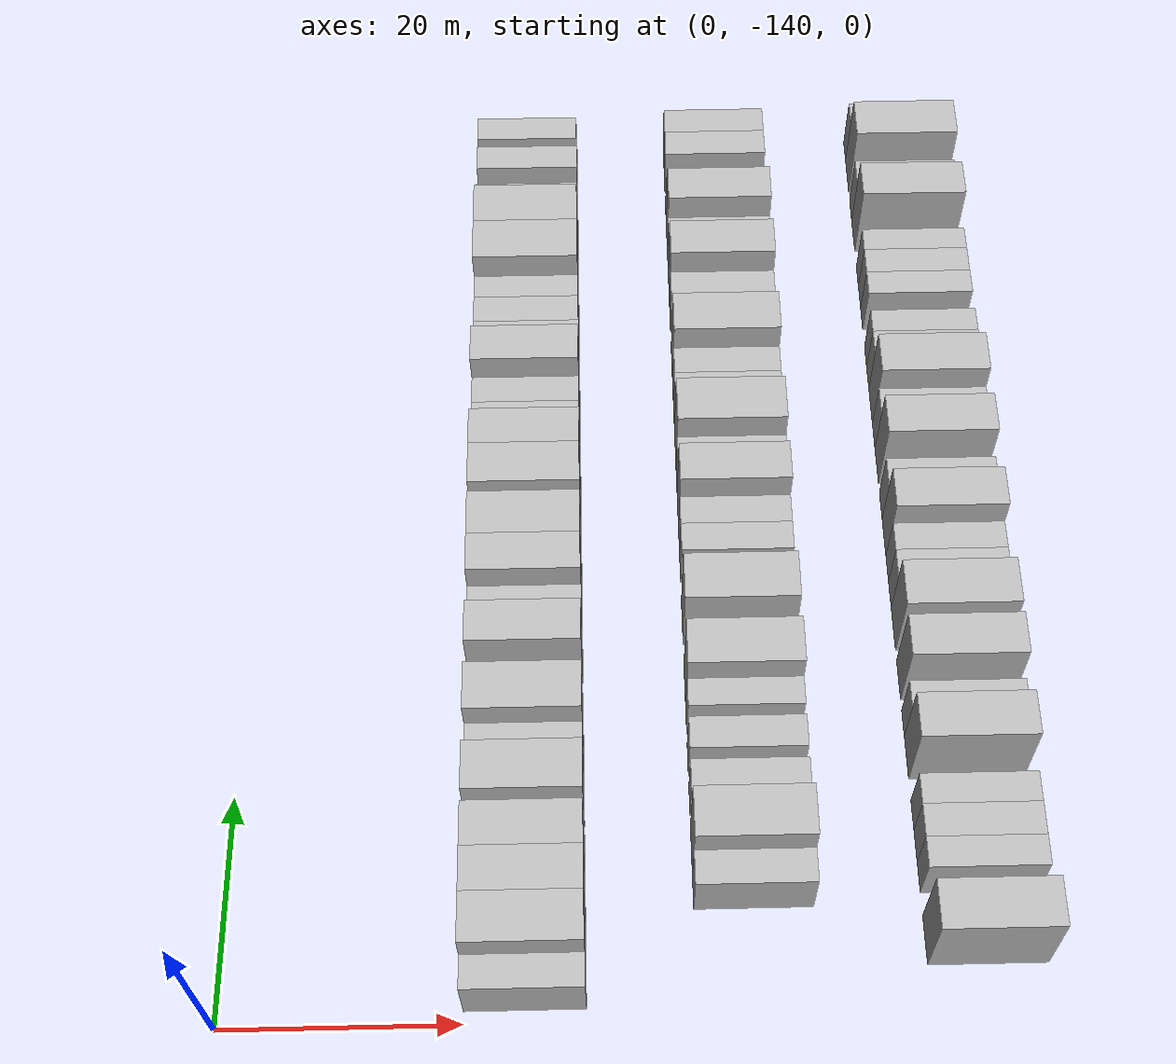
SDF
<sdf version="1.6">
 <world name="default">
  <model name="building_25">
   <static>1</static>
   <pose>25.0000 -137.4993 0 0.000000 0.000000 0.000000</pose>
   <link name="link">
    <pose>0 0 3.00 0 0 0</pose>
    <collision name="collision"><geometry><box><size>10.0000 2.8210 6.0000</size></box></geometry></collision>
    <visual name="visual">
     <cast_shadows>0</cast_shadows>
     <geometry><box><size>10.0000 2.8210 6.0000</size></box></geometry>
     <material>
      <script>
       <uri>model://HANNAS_wall/materials/scripts</uri>
       <uri>model://HANNAS_wall/materials/textures</uri>
       <name>vrc/HANNAS_wall</name>
      </script>
     </material>
    </visual>
   </link>
  </model>
  <model name="building_26">
   <static>1</static>
   <pose>25.0000 -133.9893 0 0.000000 0.000000 0.000000</pose>
   <link name="link">
    <pose>0 0 4.50 0 0 0</pose>
    <collision name="collision"><geometry><box><size>10.0000 4.1991 9.0000</size></box></geometry></collision>
    <visual name="visual">
     <cast_shadows>0</cast_shadows>
     <geometry><box><size>10.0000 4.1991 9.0000</size></box></geometry>
     <material>
      <script>
       <uri>model://HANNAS_wall/materials/scripts</uri>
       <uri>model://HANNAS_wall/materials/textures</uri>
       <name>vrc/HANNAS_wall</name>
      </script>
     </material>
    </visual>
   </link>
  </model>
  <model name="building_27">
   <static>1</static>
   <pose>25.0000 -129.9966 0 0.000000 0.000000 0.000000</pose>
   <link name="link">
    <pose>0 0 4.50 0 0 0</pose>
    <collision name="collision"><geometry><box><size>10.0000 3.7862 9.0000</size></box></geometry></collision>
    <visual name="visual">
     <cast_shadows>0</cast_shadows>
     <geometry><box><size>10.0000 3.7862 9.0000</size></box></geometry>
     <material>
      <script>
       <uri>model://HANNAS_wall/materials/scripts</uri>
       <uri>model://HANNAS_wall/materials/textures</uri>
       <name>vrc/HANNAS_wall</name>
      </script>
     </material>
    </visual>
   </link>
  </model>
  <model name="building_28">
   <static>1</static>
   <pose>25.0000 -126.1826 0 0.000000 0.000000 0.000000</pose>
   <link name="link">
    <pose>0 0 4.50 0 0 0</pose>
    <collision name="collision"><geometry><box><size>10.0000 3.8418 9.0000</size></box></geometry></collision>
    <visual name="visual">
     <cast_shadows>0</cast_shadows>
     <geometry><box><size>10.0000 3.8418 9.0000</size></box></geometry>
     <material>
      <script>
       <uri>model://HANNAS_wall/materials/scripts</uri>
       <uri>model://HANNAS_wall/materials/textures</uri>
       <name>vrc/HANNAS_wall</name>
      </script>
     </material>
    </visual>
   </link>
  </model>
  <model name="building_29">
   <static>1</static>
   <pose>25.0000 -121.1121 0 0.000000 0.000000 0.000000</pose>
   <link name="link">
    <pose>0 0 4.50 0 0 0</pose>
    <collision name="collision"><geometry><box><size>10.0000 4.2991 9.0000</size></box></geometry></collision>
    <visual name="visual">
     <cast_shadows>0</cast_shadows>
     <geometry><box><size>10.0000 4.2991 9.0000</size></box></geometry>
     <material>
      <script>
       <uri>model://HANNAS_wall/materials/scripts</uri>
       <uri>model://HANNAS_wall/materials/textures</uri>
       <name>vrc/HANNAS_wall</name>
      </script>
     </material>
    </visual>
   </link>
  </model>
  <model name="building_30">
   <static>1</static>
   <pose>25.0000 -117.5351 0 0.000000 0.000000 0.000000</pose>
   <link name="link">
    <pose>0 0 3.00 0 0 0</pose>
    <collision name="collision"><geometry><box><size>10.0000 2.8550 6.0000</size></box></geometry></collision>
    <visual name="visual">
     <cast_shadows>0</cast_shadows>
     <geometry><box><size>10.0000 2.8550 6.0000</size></box></geometry>
     <material>
      <script>
       <uri>model://HANNAS_wall/materials/scripts</uri>
       <uri>model://HANNAS_wall/materials/textures</uri>
       <name>vrc/HANNAS_wall</name>
      </script>
     </material>
    </visual>
   </link>
  </model>
  <model name="building_31">
   <static>1</static>
   <pose>25.0000 -113.9588 0 0.000000 0.000000 0.000000</pose>
   <link name="link">
    <pose>0 0 4.50 0 0 0</pose>
    <collision name="collision"><geometry><box><size>10.0000 4.2975 9.0000</size></box></geometry></collision>
    <visual name="visual">
     <cast_shadows>0</cast_shadows>
     <geometry><box><size>10.0000 4.2975 9.0000</size></box></geometry>
     <material>
      <script>
       <uri>model://HANNAS_wall/materials/scripts</uri>
       <uri>model://HANNAS_wall/materials/textures</uri>
       <name>vrc/HANNAS_wall</name>
      </script>
     </material>
    </visual>
   </link>
  </model>
  <model name="building_32">
   <static>1</static>
   <pose>25.0000 -107.8749 0 0.000000 0.000000 0.000000</pose>
   <link name="link">
    <pose>0 0 4.50 0 0 0</pose>
    <collision name="collision"><geometry><box><size>10.0000 3.8703 9.0000</size></box></geometry></collision>
    <visual name="visual">
     <cast_shadows>0</cast_shadows>
     <geometry><box><size>10.0000 3.8703 9.0000</size></box></geometry>
     <material>
      <script>
       <uri>model://HANNAS_wall/materials/scripts</uri>
       <uri>model://HANNAS_wall/materials/textures</uri>
       <name>vrc/HANNAS_wall</name>
      </script>
     </material>
    </visual>
   </link>
  </model>
  <model name="building_33">
   <static>1</static>
   <pose>25.0000 -104.4467 0 0.000000 0.000000 0.000000</pose>
   <link name="link">
    <pose>0 0 3.00 0 0 0</pose>
    <collision name="collision"><geometry><box><size>10.0000 2.9861 6.0000</size></box></geometry></collision>
    <visual name="visual">
     <cast_shadows>0</cast_shadows>
     <geometry><box><size>10.0000 2.9861 6.0000</size></box></geometry>
     <material>
      <script>
       <uri>model://HANNAS_wall/materials/scripts</uri>
       <uri>model://HANNAS_wall/materials/textures</uri>
       <name>vrc/HANNAS_wall</name>
      </script>
     </material>
    </visual>
   </link>
  </model>
  <model name="building_34">
   <static>1</static>
   <pose>25.0000 -101.1200 0 0.000000 0.000000 0.000000</pose>
   <link name="link">
    <pose>0 0 4.50 0 0 0</pose>
    <collision name="collision"><geometry><box><size>10.0000 3.6673 9.0000</size></box></geometry></collision>
    <visual name="visual">
     <cast_shadows>0</cast_shadows>
     <geometry><box><size>10.0000 3.6673 9.0000</size></box></geometry>
     <material>
      <script>
       <uri>model://HANNAS_wall/materials/scripts</uri>
       <uri>model://HANNAS_wall/materials/textures</uri>
       <name>vrc/HANNAS_wall</name>
      </script>
     </material>
    </visual>
   </link>
  </model>
  <model name="building_35">
   <static>1</static>
   <pose>25.0000 -97.1471 0 0.000000 0.000000 0.000000</pose>
   <link name="link">
    <pose>0 0 4.50 0 0 0</pose>
    <collision name="collision"><geometry><box><size>10.0000 4.2785 9.0000</size></box></geometry></collision>
    <visual name="visual">
     <cast_shadows>0</cast_shadows>
     <geometry><box><size>10.0000 4.2785 9.0000</size></box></geometry>
     <material>
      <script>
       <uri>model://HANNAS_wall/materials/scripts</uri>
       <uri>model://HANNAS_wall/materials/textures</uri>
       <name>vrc/HANNAS_wall</name>
      </script>
     </material>
    </visual>
   </link>
  </model>
  <model name="building_36">
   <static>1</static>
   <pose>25.0000 -91.9630 0 0.000000 0.000000 0.000000</pose>
   <link name="link">
    <pose>0 0 4.50 0 0 0</pose>
    <collision name="collision"><geometry><box><size>10.0000 4.0897 9.0000</size></box></geometry></collision>
    <visual name="visual">
     <cast_shadows>0</cast_shadows>
     <geometry><box><size>10.0000 4.0897 9.0000</size></box></geometry>
     <material>
      <script>
       <uri>model://HANNAS_wall/materials/scripts</uri>
       <uri>model://HANNAS_wall/materials/textures</uri>
       <name>vrc/HANNAS_wall</name>
      </script>
     </material>
    </visual>
   </link>
  </model>
  <model name="building_37">
   <static>1</static>
   <pose>25.0000 -88.0747 0 0.000000 0.000000 0.000000</pose>
   <link name="link">
    <pose>0 0 4.50 0 0 0</pose>
    <collision name="collision"><geometry><box><size>10.0000 3.6870 9.0000</size></box></geometry></collision>
    <visual name="visual">
     <cast_shadows>0</cast_shadows>
     <geometry><box><size>10.0000 3.6870 9.0000</size></box></geometry>
     <material>
      <script>
       <uri>model://HANNAS_wall/materials/scripts</uri>
       <uri>model://HANNAS_wall/materials/textures</uri>
       <name>vrc/HANNAS_wall</name>
      </script>
     </material>
    </visual>
   </link>
  </model>
  <model name="building_38">
   <static>1</static>
   <pose>25.0000 -84.8707 0 0.000000 0.000000 0.000000</pose>
   <link name="link">
    <pose>0 0 3.00 0 0 0</pose>
    <collision name="collision"><geometry><box><size>10.0000 2.7210 6.0000</size></box></geometry></collision>
    <visual name="visual">
     <cast_shadows>0</cast_shadows>
     <geometry><box><size>10.0000 2.7210 6.0000</size></box></geometry>
     <material>
      <script>
       <uri>model://HANNAS_wall/materials/scripts</uri>
       <uri>model://HANNAS_wall/materials/textures</uri>
       <name>vrc/HANNAS_wall</name>
      </script>
     </material>
    </visual>
   </link>
  </model>
  <model name="building_39">
   <static>1</static>
   <pose>25.0000 -82.1337 0 0.000000 0.000000 0.000000</pose>
   <link name="link">
    <pose>0 0 3.00 0 0 0</pose>
    <collision name="collision"><geometry><box><size>10.0000 2.7530 6.0000</size></box></geometry></collision>
    <visual name="visual">
     <cast_shadows>0</cast_shadows>
     <geometry><box><size>10.0000 2.7530 6.0000</size></box></geometry>
     <material>
      <script>
       <uri>model://HANNAS_wall/materials/scripts</uri>
       <uri>model://HANNAS_wall/materials/textures</uri>
       <name>vrc/HANNAS_wall</name>
      </script>
     </material>
    </visual>
   </link>
  </model>
  <model name="building_40">
   <static>1</static>
   <pose>25.0000 -78.8651 0 0.000000 0.000000 0.000000</pose>
   <link name="link">
    <pose>0 0 4.50 0 0 0</pose>
    <collision name="collision"><geometry><box><size>10.0000 3.7840 9.0000</size></box></geometry></collision>
    <visual name="visual">
     <cast_shadows>0</cast_shadows>
     <geometry><box><size>10.0000 3.7840 9.0000</size></box></geometry>
     <material>
      <script>
       <uri>model://HANNAS_wall/materials/scripts</uri>
       <uri>model://HANNAS_wall/materials/textures</uri>
       <name>vrc/HANNAS_wall</name>
      </script>
     </material>
    </visual>
   </link>
  </model>
  <model name="building_41">
   <static>1</static>
   <pose>25.0000 -75.6244 0 0.000000 0.000000 0.000000</pose>
   <link name="link">
    <pose>0 0 3.00 0 0 0</pose>
    <collision name="collision"><geometry><box><size>10.0000 2.6975 6.0000</size></box></geometry></collision>
    <visual name="visual">
     <cast_shadows>0</cast_shadows>
     <geometry><box><size>10.0000 2.6975 6.0000</size></box></geometry>
     <material>
      <script>
       <uri>model://HANNAS_wall/materials/scripts</uri>
       <uri>model://HANNAS_wall/materials/textures</uri>
       <name>vrc/HANNAS_wall</name>
      </script>
     </material>
    </visual>
   </link>
  </model>
  <model name="building_42">
   <static>1</static>
   <pose>25.0000 -72.8393 0 0.000000 0.000000 0.000000</pose>
   <link name="link">
    <pose>0 0 3.00 0 0 0</pose>
    <collision name="collision"><geometry><box><size>10.0000 2.8727 6.0000</size></box></geometry></collision>
    <visual name="visual">
     <cast_shadows>0</cast_shadows>
     <geometry><box><size>10.0000 2.8727 6.0000</size></box></geometry>
     <material>
      <script>
       <uri>model://HANNAS_wall/materials/scripts</uri>
       <uri>model://HANNAS_wall/materials/textures</uri>
       <name>vrc/HANNAS_wall</name>
      </script>
     </material>
    </visual>
   </link>
  </model>
  <model name="building_43">
   <static>1</static>
   <pose>25.0000 -70.1490 0 0.000000 0.000000 0.000000</pose>
   <link name="link">
    <pose>0 0 3.00 0 0 0</pose>
    <collision name="collision"><geometry><box><size>10.0000 2.5079 6.0000</size></box></geometry></collision>
    <visual name="visual">
     <cast_shadows>0</cast_shadows>
     <geometry><box><size>10.0000 2.5079 6.0000</size></box></geometry>
     <material>
      <script>
       <uri>model://HANNAS_wall/materials/scripts</uri>
       <uri>model://HANNAS_wall/materials/textures</uri>
       <name>vrc/HANNAS_wall</name>
      </script>
     </material>
    </visual>
   </link>
  </model>
  <model name="building_44">
   <static>1</static>
   <pose>25.0000 -66.6696 0 0.000000 0.000000 0.000000</pose>
   <link name="link">
    <pose>0 0 4.50 0 0 0</pose>
    <collision name="collision"><geometry><box><size>10.0000 4.4510 9.0000</size></box></geometry></collision>
    <visual name="visual">
     <cast_shadows>0</cast_shadows>
     <geometry><box><size>10.0000 4.4510 9.0000</size></box></geometry>
     <material>
      <script>
       <uri>model://HANNAS_wall/materials/scripts</uri>
       <uri>model://HANNAS_wall/materials/textures</uri>
       <name>vrc/HANNAS_wall</name>
      </script>
     </material>
    </visual>
   </link>
  </model>
  <model name="building_45">
   <static>1</static>
   <pose>25.0000 -62.2535 0 0.000000 0.000000 0.000000</pose>
   <link name="link">
    <pose>0 0 4.50 0 0 0</pose>
    <collision name="collision"><geometry><box><size>10.0000 4.3812 9.0000</size></box></geometry></collision>
    <visual name="visual">
     <cast_shadows>0</cast_shadows>
     <geometry><box><size>10.0000 4.3812 9.0000</size></box></geometry>
     <material>
      <script>
       <uri>model://HANNAS_wall/materials/scripts</uri>
       <uri>model://HANNAS_wall/materials/textures</uri>
       <name>vrc/HANNAS_wall</name>
      </script>
     </material>
    </visual>
   </link>
  </model>
  <model name="building_46">
   <static>1</static>
   <pose>25.0000 -58.7166 0 0.000000 0.000000 0.000000</pose>
   <link name="link">
    <pose>0 0 3.00 0 0 0</pose>
    <collision name="collision"><geometry><box><size>10.0000 2.6926 6.0000</size></box></geometry></collision>
    <visual name="visual">
     <cast_shadows>0</cast_shadows>
     <geometry><box><size>10.0000 2.6926 6.0000</size></box></geometry>
     <material>
      <script>
       <uri>model://HANNAS_wall/materials/scripts</uri>
       <uri>model://HANNAS_wall/materials/textures</uri>
       <name>vrc/HANNAS_wall</name>
      </script>
     </material>
    </visual>
   </link>
  </model>
  <model name="building_47">
   <static>1</static>
   <pose>25.0000 -53.9644 0 0.000000 0.000000 0.000000</pose>
   <link name="link">
    <pose>0 0 3.00 0 0 0</pose>
    <collision name="collision"><geometry><box><size>10.0000 2.8117 6.0000</size></box></geometry></collision>
    <visual name="visual">
     <cast_shadows>0</cast_shadows>
     <geometry><box><size>10.0000 2.8117 6.0000</size></box></geometry>
     <material>
      <script>
       <uri>model://HANNAS_wall/materials/scripts</uri>
       <uri>model://HANNAS_wall/materials/textures</uri>
       <name>vrc/HANNAS_wall</name>
      </script>
     </material>
    </visual>
   </link>
  </model>
  <model name="building_48">
   <static>1</static>
   <pose>25.0000 -50.1819 0 0.000000 0.000000 0.000000</pose>
   <link name="link">
    <pose>0 0 3.00 0 0 0</pose>
    <collision name="collision"><geometry><box><size>10.0000 2.7533 6.0000</size></box></geometry></collision>
    <visual name="visual">
     <cast_shadows>0</cast_shadows>
     <geometry><box><size>10.0000 2.7533 6.0000</size></box></geometry>
     <material>
      <script>
       <uri>model://HANNAS_wall/materials/scripts</uri>
       <uri>model://HANNAS_wall/materials/textures</uri>
       <name>vrc/HANNAS_wall</name>
      </script>
     </material>
    </visual>
   </link>
  </model>
  <model name="building_138">
   <static>1</static>
   <pose>44.0000 -129.2678 0 0.000000 0.000000 0.000000</pose>
   <link name="link">
    <pose>0 0 3.00 0 0 0</pose>
    <collision name="collision"><geometry><box><size>10.0000 2.9373 6.0000</size></box></geometry></collision>
    <visual name="visual">
     <cast_shadows>0</cast_shadows>
     <geometry><box><size>10.0000 2.9373 6.0000</size></box></geometry>
     <material>
      <script>
       <uri>model://HANNAS_wall/materials/scripts</uri>
       <uri>model://HANNAS_wall/materials/textures</uri>
       <name>vrc/HANNAS_wall</name>
      </script>
     </material>
    </visual>
   </link>
  </model>
  <model name="building_139">
   <static>1</static>
   <pose>44.0000 -125.6050 0 0.000000 0.000000 0.000000</pose>
   <link name="link">
    <pose>0 0 4.50 0 0 0</pose>
    <collision name="collision"><geometry><box><size>10.0000 4.3883 9.0000</size></box></geometry></collision>
    <visual name="visual">
     <cast_shadows>0</cast_shadows>
     <geometry><box><size>10.0000 4.3883 9.0000</size></box></geometry>
     <material>
      <script>
       <uri>model://HANNAS_wall/materials/scripts</uri>
       <uri>model://HANNAS_wall/materials/textures</uri>
       <name>vrc/HANNAS_wall</name>
      </script>
     </material>
    </visual>
   </link>
  </model>
  <model name="building_140">
   <static>1</static>
   <pose>44.0000 -121.0929 0 0.000000 0.000000 0.000000</pose>
   <link name="link">
    <pose>0 0 3.00 0 0 0</pose>
    <collision name="collision"><geometry><box><size>10.0000 2.6358 6.0000</size></box></geometry></collision>
    <visual name="visual">
     <cast_shadows>0</cast_shadows>
     <geometry><box><size>10.0000 2.6358 6.0000</size></box></geometry>
     <material>
      <script>
       <uri>model://HANNAS_wall/materials/scripts</uri>
       <uri>model://HANNAS_wall/materials/textures</uri>
       <name>vrc/HANNAS_wall</name>
      </script>
     </material>
    </visual>
   </link>
  </model>
  <model name="building_141">
   <static>1</static>
   <pose>44.0000 -117.3289 0 0.000000 0.000000 0.000000</pose>
   <link name="link">
    <pose>0 0 3.00 0 0 0</pose>
    <collision name="collision"><geometry><box><size>10.0000 2.8922 6.0000</size></box></geometry></collision>
    <visual name="visual">
     <cast_shadows>0</cast_shadows>
     <geometry><box><size>10.0000 2.8922 6.0000</size></box></geometry>
     <material>
      <script>
       <uri>model://HANNAS_wall/materials/scripts</uri>
       <uri>model://HANNAS_wall/materials/textures</uri>
       <name>vrc/HANNAS_wall</name>
      </script>
     </material>
    </visual>
   </link>
  </model>
  <model name="building_142">
   <static>1</static>
   <pose>44.0000 -113.6048 0 0.000000 0.000000 0.000000</pose>
   <link name="link">
    <pose>0 0 3.00 0 0 0</pose>
    <collision name="collision"><geometry><box><size>10.0000 2.5561 6.0000</size></box></geometry></collision>
    <visual name="visual">
     <cast_shadows>0</cast_shadows>
     <geometry><box><size>10.0000 2.5561 6.0000</size></box></geometry>
     <material>
      <script>
       <uri>model://HANNAS_wall/materials/scripts</uri>
       <uri>model://HANNAS_wall/materials/textures</uri>
       <name>vrc/HANNAS_wall</name>
      </script>
     </material>
    </visual>
   </link>
  </model>
  <model name="building_143">
   <static>1</static>
   <pose>44.0000 -110.2268 0 0.000000 0.000000 0.000000</pose>
   <link name="link">
    <pose>0 0 4.50 0 0 0</pose>
    <collision name="collision"><geometry><box><size>10.0000 4.1998 9.0000</size></box></geometry></collision>
    <visual name="visual">
     <cast_shadows>0</cast_shadows>
     <geometry><box><size>10.0000 4.1998 9.0000</size></box></geometry>
     <material>
      <script>
       <uri>model://HANNAS_wall/materials/scripts</uri>
       <uri>model://HANNAS_wall/materials/textures</uri>
       <name>vrc/HANNAS_wall</name>
      </script>
     </material>
    </visual>
   </link>
  </model>
  <model name="building_144">
   <static>1</static>
   <pose>44.0000 -103.9332 0 0.000000 0.000000 0.000000</pose>
   <link name="link">
    <pose>0 0 4.50 0 0 0</pose>
    <collision name="collision"><geometry><box><size>10.0000 4.3876 9.0000</size></box></geometry></collision>
    <visual name="visual">
     <cast_shadows>0</cast_shadows>
     <geometry><box><size>10.0000 4.3876 9.0000</size></box></geometry>
     <material>
      <script>
       <uri>model://HANNAS_wall/materials/scripts</uri>
       <uri>model://HANNAS_wall/materials/textures</uri>
       <name>vrc/HANNAS_wall</name>
      </script>
     </material>
    </visual>
   </link>
  </model>
  <model name="building_145">
   <static>1</static>
   <pose>44.0000 -98.3554 0 0.000000 0.000000 0.000000</pose>
   <link name="link">
    <pose>0 0 3.00 0 0 0</pose>
    <collision name="collision"><geometry><box><size>10.0000 2.7679 6.0000</size></box></geometry></collision>
    <visual name="visual">
     <cast_shadows>0</cast_shadows>
     <geometry><box><size>10.0000 2.7679 6.0000</size></box></geometry>
     <material>
      <script>
       <uri>model://HANNAS_wall/materials/scripts</uri>
       <uri>model://HANNAS_wall/materials/textures</uri>
       <name>vrc/HANNAS_wall</name>
      </script>
     </material>
    </visual>
   </link>
  </model>
  <model name="building_146">
   <static>1</static>
   <pose>44.0000 -95.5888 0 0.000000 0.000000 0.000000</pose>
   <link name="link">
    <pose>0 0 3.00 0 0 0</pose>
    <collision name="collision"><geometry><box><size>10.0000 2.7652 6.0000</size></box></geometry></collision>
    <visual name="visual">
     <cast_shadows>0</cast_shadows>
     <geometry><box><size>10.0000 2.7652 6.0000</size></box></geometry>
     <material>
      <script>
       <uri>model://HANNAS_wall/materials/scripts</uri>
       <uri>model://HANNAS_wall/materials/textures</uri>
       <name>vrc/HANNAS_wall</name>
      </script>
     </material>
    </visual>
   </link>
  </model>
  <model name="building_147">
   <static>1</static>
   <pose>44.0000 -92.2935 0 0.000000 0.000000 0.000000</pose>
   <link name="link">
    <pose>0 0 4.50 0 0 0</pose>
    <collision name="collision"><geometry><box><size>10.0000 3.8253 9.0000</size></box></geometry></collision>
    <visual name="visual">
     <cast_shadows>0</cast_shadows>
     <geometry><box><size>10.0000 3.8253 9.0000</size></box></geometry>
     <material>
      <script>
       <uri>model://HANNAS_wall/materials/scripts</uri>
       <uri>model://HANNAS_wall/materials/textures</uri>
       <name>vrc/HANNAS_wall</name>
      </script>
     </material>
    </visual>
   </link>
  </model>
  <model name="building_148">
   <static>1</static>
   <pose>44.0000 -89.0748 0 0.000000 0.000000 0.000000</pose>
   <link name="link">
    <pose>0 0 3.00 0 0 0</pose>
    <collision name="collision"><geometry><box><size>10.0000 2.6122 6.0000</size></box></geometry></collision>
    <visual name="visual">
     <cast_shadows>0</cast_shadows>
     <geometry><box><size>10.0000 2.6122 6.0000</size></box></geometry>
     <material>
      <script>
       <uri>model://HANNAS_wall/materials/scripts</uri>
       <uri>model://HANNAS_wall/materials/textures</uri>
       <name>vrc/HANNAS_wall</name>
      </script>
     </material>
    </visual>
   </link>
  </model>
  <model name="building_149">
   <static>1</static>
   <pose>44.0000 -85.5253 0 0.000000 0.000000 0.000000</pose>
   <link name="link">
    <pose>0 0 4.50 0 0 0</pose>
    <collision name="collision"><geometry><box><size>10.0000 4.4867 9.0000</size></box></geometry></collision>
    <visual name="visual">
     <cast_shadows>0</cast_shadows>
     <geometry><box><size>10.0000 4.4867 9.0000</size></box></geometry>
     <material>
      <script>
       <uri>model://HANNAS_wall/materials/scripts</uri>
       <uri>model://HANNAS_wall/materials/textures</uri>
       <name>vrc/HANNAS_wall</name>
      </script>
     </material>
    </visual>
   </link>
  </model>
  <model name="building_150">
   <static>1</static>
   <pose>44.0000 -81.9376 0 0.000000 0.000000 0.000000</pose>
   <link name="link">
    <pose>0 0 3.00 0 0 0</pose>
    <collision name="collision"><geometry><box><size>10.0000 2.6887 6.0000</size></box></geometry></collision>
    <visual name="visual">
     <cast_shadows>0</cast_shadows>
     <geometry><box><size>10.0000 2.6887 6.0000</size></box></geometry>
     <material>
      <script>
       <uri>model://HANNAS_wall/materials/scripts</uri>
       <uri>model://HANNAS_wall/materials/textures</uri>
       <name>vrc/HANNAS_wall</name>
      </script>
     </material>
    </visual>
   </link>
  </model>
  <model name="building_151">
   <static>1</static>
   <pose>44.0000 -79.1861 0 0.000000 0.000000 0.000000</pose>
   <link name="link">
    <pose>0 0 3.00 0 0 0</pose>
    <collision name="collision"><geometry><box><size>10.0000 2.8143 6.0000</size></box></geometry></collision>
    <visual name="visual">
     <cast_shadows>0</cast_shadows>
     <geometry><box><size>10.0000 2.8143 6.0000</size></box></geometry>
     <material>
      <script>
       <uri>model://HANNAS_wall/materials/scripts</uri>
       <uri>model://HANNAS_wall/materials/textures</uri>
       <name>vrc/HANNAS_wall</name>
      </script>
     </material>
    </visual>
   </link>
  </model>
  <model name="building_152">
   <static>1</static>
   <pose>44.0000 -75.6873 0 0.000000 0.000000 0.000000</pose>
   <link name="link">
    <pose>0 0 4.50 0 0 0</pose>
    <collision name="collision"><geometry><box><size>10.0000 4.1834 9.0000</size></box></geometry></collision>
    <visual name="visual">
     <cast_shadows>0</cast_shadows>
     <geometry><box><size>10.0000 4.1834 9.0000</size></box></geometry>
     <material>
      <script>
       <uri>model://HANNAS_wall/materials/scripts</uri>
       <uri>model://HANNAS_wall/materials/textures</uri>
       <name>vrc/HANNAS_wall</name>
      </script>
     </material>
    </visual>
   </link>
  </model>
  <model name="building_153">
   <static>1</static>
   <pose>44.0000 -70.1980 0 0.000000 0.000000 0.000000</pose>
   <link name="link">
    <pose>0 0 3.00 0 0 0</pose>
    <collision name="collision"><geometry><box><size>10.0000 2.7953 6.0000</size></box></geometry></collision>
    <visual name="visual">
     <cast_shadows>0</cast_shadows>
     <geometry><box><size>10.0000 2.7953 6.0000</size></box></geometry>
     <material>
      <script>
       <uri>model://HANNAS_wall/materials/scripts</uri>
       <uri>model://HANNAS_wall/materials/textures</uri>
       <name>vrc/HANNAS_wall</name>
      </script>
     </material>
    </visual>
   </link>
  </model>
  <model name="building_154">
   <static>1</static>
   <pose>44.0000 -66.8519 0 0.000000 0.000000 0.000000</pose>
   <link name="link">
    <pose>0 0 4.50 0 0 0</pose>
    <collision name="collision"><geometry><box><size>10.0000 3.8970 9.0000</size></box></geometry></collision>
    <visual name="visual">
     <cast_shadows>0</cast_shadows>
     <geometry><box><size>10.0000 3.8970 9.0000</size></box></geometry>
     <material>
      <script>
       <uri>model://HANNAS_wall/materials/scripts</uri>
       <uri>model://HANNAS_wall/materials/textures</uri>
       <name>vrc/HANNAS_wall</name>
      </script>
     </material>
    </visual>
   </link>
  </model>
  <model name="building_155">
   <static>1</static>
   <pose>44.0000 -63.4823 0 0.000000 0.000000 0.000000</pose>
   <link name="link">
    <pose>0 0 3.00 0 0 0</pose>
    <collision name="collision"><geometry><box><size>10.0000 2.8421 6.0000</size></box></geometry></collision>
    <visual name="visual">
     <cast_shadows>0</cast_shadows>
     <geometry><box><size>10.0000 2.8421 6.0000</size></box></geometry>
     <material>
      <script>
       <uri>model://HANNAS_wall/materials/scripts</uri>
       <uri>model://HANNAS_wall/materials/textures</uri>
       <name>vrc/HANNAS_wall</name>
      </script>
     </material>
    </visual>
   </link>
  </model>
  <model name="building_156">
   <static>1</static>
   <pose>44.0000 -60.1955 0 0.000000 0.000000 0.000000</pose>
   <link name="link">
    <pose>0 0 4.50 0 0 0</pose>
    <collision name="collision"><geometry><box><size>10.0000 3.7317 9.0000</size></box></geometry></collision>
    <visual name="visual">
     <cast_shadows>0</cast_shadows>
     <geometry><box><size>10.0000 3.7317 9.0000</size></box></geometry>
     <material>
      <script>
       <uri>model://HANNAS_wall/materials/scripts</uri>
       <uri>model://HANNAS_wall/materials/textures</uri>
       <name>vrc/HANNAS_wall</name>
      </script>
     </material>
    </visual>
   </link>
  </model>
  <model name="building_157">
   <static>1</static>
   <pose>44.0000 -57.1191 0 0.000000 0.000000 0.000000</pose>
   <link name="link">
    <pose>0 0 3.00 0 0 0</pose>
    <collision name="collision"><geometry><box><size>10.0000 2.4211 6.0000</size></box></geometry></collision>
    <visual name="visual">
     <cast_shadows>0</cast_shadows>
     <geometry><box><size>10.0000 2.4211 6.0000</size></box></geometry>
     <material>
      <script>
       <uri>model://HANNAS_wall/materials/scripts</uri>
       <uri>model://HANNAS_wall/materials/textures</uri>
       <name>vrc/HANNAS_wall</name>
      </script>
     </material>
    </visual>
   </link>
  </model>
  <model name="building_158">
   <static>1</static>
   <pose>44.0000 -52.4338 0 0.000000 0.000000 0.000000</pose>
   <link name="link">
    <pose>0 0 3.00 0 0 0</pose>
    <collision name="collision"><geometry><box><size>10.0000 2.9494 6.0000</size></box></geometry></collision>
    <visual name="visual">
     <cast_shadows>0</cast_shadows>
     <geometry><box><size>10.0000 2.9494 6.0000</size></box></geometry>
     <material>
      <script>
       <uri>model://HANNAS_wall/materials/scripts</uri>
       <uri>model://HANNAS_wall/materials/textures</uri>
       <name>vrc/HANNAS_wall</name>
      </script>
     </material>
    </visual>
   </link>
  </model>
  <model name="building_159">
   <static>1</static>
   <pose>44.0000 -49.5028 0 0.000000 0.000000 0.000000</pose>
   <link name="link">
    <pose>0 0 3.00 0 0 0</pose>
    <collision name="collision"><geometry><box><size>10.0000 2.9127 6.0000</size></box></geometry></collision>
    <visual name="visual">
     <cast_shadows>0</cast_shadows>
     <geometry><box><size>10.0000 2.9127 6.0000</size></box></geometry>
     <material>
      <script>
       <uri>model://HANNAS_wall/materials/scripts</uri>
       <uri>model://HANNAS_wall/materials/textures</uri>
       <name>vrc/HANNAS_wall</name>
      </script>
     </material>
    </visual>
   </link>
  </model>
  <model name="building_259">
   <static>1</static>
   <pose>63.0000 -133.8009 0 0.000000 0.000000 0.000000</pose>
   <link name="link">
    <pose>0 0 4.50 0 0 0</pose>
    <collision name="collision"><geometry><box><size>10.0000 4.1885 9.0000</size></box></geometry></collision>
    <visual name="visual">
     <cast_shadows>0</cast_shadows>
     <geometry><box><size>10.0000 4.1885 9.0000</size></box></geometry>
     <material>
      <script>
       <uri>model://HANNAS_wall/materials/scripts</uri>
       <uri>model://HANNAS_wall/materials/textures</uri>
       <name>vrc/HANNAS_wall</name>
      </script>
     </material>
    </visual>
   </link>
  </model>
  <model name="building_260">
   <static>1</static>
   <pose>63.0000 -128.3763 0 0.000000 0.000000 0.000000</pose>
   <link name="link">
    <pose>0 0 3.00 0 0 0</pose>
    <collision name="collision"><geometry><box><size>10.0000 2.6608 6.0000</size></box></geometry></collision>
    <visual name="visual">
     <cast_shadows>0</cast_shadows>
     <geometry><box><size>10.0000 2.6608 6.0000</size></box></geometry>
     <material>
      <script>
       <uri>model://HANNAS_wall/materials/scripts</uri>
       <uri>model://HANNAS_wall/materials/textures</uri>
       <name>vrc/HANNAS_wall</name>
      </script>
     </material>
    </visual>
   </link>
  </model>
  <model name="building_261">
   <static>1</static>
   <pose>63.0000 -125.6070 0 0.000000 0.000000 0.000000</pose>
   <link name="link">
    <pose>0 0 3.00 0 0 0</pose>
    <collision name="collision"><geometry><box><size>10.0000 2.8776 6.0000</size></box></geometry></collision>
    <visual name="visual">
     <cast_shadows>0</cast_shadows>
     <geometry><box><size>10.0000 2.8776 6.0000</size></box></geometry>
     <material>
      <script>
       <uri>model://HANNAS_wall/materials/scripts</uri>
       <uri>model://HANNAS_wall/materials/textures</uri>
       <name>vrc/HANNAS_wall</name>
      </script>
     </material>
    </visual>
   </link>
  </model>
  <model name="building_262">
   <static>1</static>
   <pose>63.0000 -122.8321 0 0.000000 0.000000 0.000000</pose>
   <link name="link">
    <pose>0 0 3.00 0 0 0</pose>
    <collision name="collision"><geometry><box><size>10.0000 2.6722 6.0000</size></box></geometry></collision>
    <visual name="visual">
     <cast_shadows>0</cast_shadows>
     <geometry><box><size>10.0000 2.6722 6.0000</size></box></geometry>
     <material>
      <script>
       <uri>model://HANNAS_wall/materials/scripts</uri>
       <uri>model://HANNAS_wall/materials/textures</uri>
       <name>vrc/HANNAS_wall</name>
      </script>
     </material>
    </visual>
   </link>
  </model>
  <model name="building_263">
   <static>1</static>
   <pose>63.0000 -117.4902 0 0.000000 0.000000 0.000000</pose>
   <link name="link">
    <pose>0 0 4.50 0 0 0</pose>
    <collision name="collision"><geometry><box><size>10.0000 4.0117 9.0000</size></box></geometry></collision>
    <visual name="visual">
     <cast_shadows>0</cast_shadows>
     <geometry><box><size>10.0000 4.0117 9.0000</size></box></geometry>
     <material>
      <script>
       <uri>model://HANNAS_wall/materials/scripts</uri>
       <uri>model://HANNAS_wall/materials/textures</uri>
       <name>vrc/HANNAS_wall</name>
      </script>
     </material>
    </visual>
   </link>
  </model>
  <model name="building_264">
   <static>1</static>
   <pose>63.0000 -114.2353 0 0.000000 0.000000 0.000000</pose>
   <link name="link">
    <pose>0 0 3.00 0 0 0</pose>
    <collision name="collision"><geometry><box><size>10.0000 2.4981 6.0000</size></box></geometry></collision>
    <visual name="visual">
     <cast_shadows>0</cast_shadows>
     <geometry><box><size>10.0000 2.4981 6.0000</size></box></geometry>
     <material>
      <script>
       <uri>model://HANNAS_wall/materials/scripts</uri>
       <uri>model://HANNAS_wall/materials/textures</uri>
       <name>vrc/HANNAS_wall</name>
      </script>
     </material>
    </visual>
   </link>
  </model>
  <model name="building_265">
   <static>1</static>
   <pose>63.0000 -110.0564 0 0.000000 0.000000 0.000000</pose>
   <link name="link">
    <pose>0 0 4.50 0 0 0</pose>
    <collision name="collision"><geometry><box><size>10.0000 3.8596 9.0000</size></box></geometry></collision>
    <visual name="visual">
     <cast_shadows>0</cast_shadows>
     <geometry><box><size>10.0000 3.8596 9.0000</size></box></geometry>
     <material>
      <script>
       <uri>model://HANNAS_wall/materials/scripts</uri>
       <uri>model://HANNAS_wall/materials/textures</uri>
       <name>vrc/HANNAS_wall</name>
      </script>
     </material>
    </visual>
   </link>
  </model>
  <model name="building_266">
   <static>1</static>
   <pose>63.0000 -104.9726 0 0.000000 0.000000 0.000000</pose>
   <link name="link">
    <pose>0 0 4.50 0 0 0</pose>
    <collision name="collision"><geometry><box><size>10.0000 4.3079 9.0000</size></box></geometry></collision>
    <visual name="visual">
     <cast_shadows>0</cast_shadows>
     <geometry><box><size>10.0000 4.3079 9.0000</size></box></geometry>
     <material>
      <script>
       <uri>model://HANNAS_wall/materials/scripts</uri>
       <uri>model://HANNAS_wall/materials/textures</uri>
       <name>vrc/HANNAS_wall</name>
      </script>
     </material>
    </visual>
   </link>
  </model>
  <model name="building_267">
   <static>1</static>
   <pose>63.0000 -101.4547 0 0.000000 0.000000 0.000000</pose>
   <link name="link">
    <pose>0 0 3.00 0 0 0</pose>
    <collision name="collision"><geometry><box><size>10.0000 2.7279 6.0000</size></box></geometry></collision>
    <visual name="visual">
     <cast_shadows>0</cast_shadows>
     <geometry><box><size>10.0000 2.7279 6.0000</size></box></geometry>
     <material>
      <script>
       <uri>model://HANNAS_wall/materials/scripts</uri>
       <uri>model://HANNAS_wall/materials/textures</uri>
       <name>vrc/HANNAS_wall</name>
      </script>
     </material>
    </visual>
   </link>
  </model>
  <model name="building_268">
   <static>1</static>
   <pose>63.0000 -98.7459 0 0.000000 0.000000 0.000000</pose>
   <link name="link">
    <pose>0 0 3.00 0 0 0</pose>
    <collision name="collision"><geometry><box><size>10.0000 2.6897 6.0000</size></box></geometry></collision>
    <visual name="visual">
     <cast_shadows>0</cast_shadows>
     <geometry><box><size>10.0000 2.6897 6.0000</size></box></geometry>
     <material>
      <script>
       <uri>model://HANNAS_wall/materials/scripts</uri>
       <uri>model://HANNAS_wall/materials/textures</uri>
       <name>vrc/HANNAS_wall</name>
      </script>
     </material>
    </visual>
   </link>
  </model>
  <model name="building_269">
   <static>1</static>
   <pose>63.0000 -95.4466 0 0.000000 0.000000 0.000000</pose>
   <link name="link">
    <pose>0 0 4.50 0 0 0</pose>
    <collision name="collision"><geometry><box><size>10.0000 3.9090 9.0000</size></box></geometry></collision>
    <visual name="visual">
     <cast_shadows>0</cast_shadows>
     <geometry><box><size>10.0000 3.9090 9.0000</size></box></geometry>
     <material>
      <script>
       <uri>model://HANNAS_wall/materials/scripts</uri>
       <uri>model://HANNAS_wall/materials/textures</uri>
       <name>vrc/HANNAS_wall</name>
      </script>
     </material>
    </visual>
   </link>
  </model>
  <model name="building_270">
   <static>1</static>
   <pose>63.0000 -92.0222 0 0.000000 0.000000 0.000000</pose>
   <link name="link">
    <pose>0 0 3.00 0 0 0</pose>
    <collision name="collision"><geometry><box><size>10.0000 2.9397 6.0000</size></box></geometry></collision>
    <visual name="visual">
     <cast_shadows>0</cast_shadows>
     <geometry><box><size>10.0000 2.9397 6.0000</size></box></geometry>
     <material>
      <script>
       <uri>model://HANNAS_wall/materials/scripts</uri>
       <uri>model://HANNAS_wall/materials/textures</uri>
       <name>vrc/HANNAS_wall</name>
      </script>
     </material>
    </visual>
   </link>
  </model>
  <model name="building_271">
   <static>1</static>
   <pose>63.0000 -87.5895 0 0.000000 0.000000 0.000000</pose>
   <link name="link">
    <pose>0 0 4.50 0 0 0</pose>
    <collision name="collision"><geometry><box><size>10.0000 3.9258 9.0000</size></box></geometry></collision>
    <visual name="visual">
     <cast_shadows>0</cast_shadows>
     <geometry><box><size>10.0000 3.9258 9.0000</size></box></geometry>
     <material>
      <script>
       <uri>model://HANNAS_wall/materials/scripts</uri>
       <uri>model://HANNAS_wall/materials/textures</uri>
       <name>vrc/HANNAS_wall</name>
      </script>
     </material>
    </visual>
   </link>
  </model>
  <model name="building_272">
   <static>1</static>
   <pose>63.0000 -84.2457 0 0.000000 0.000000 0.000000</pose>
   <link name="link">
    <pose>0 0 3.00 0 0 0</pose>
    <collision name="collision"><geometry><box><size>10.0000 2.7617 6.0000</size></box></geometry></collision>
    <visual name="visual">
     <cast_shadows>0</cast_shadows>
     <geometry><box><size>10.0000 2.7617 6.0000</size></box></geometry>
     <material>
      <script>
       <uri>model://HANNAS_wall/materials/scripts</uri>
       <uri>model://HANNAS_wall/materials/textures</uri>
       <name>vrc/HANNAS_wall</name>
      </script>
     </material>
    </visual>
   </link>
  </model>
  <model name="building_273">
   <static>1</static>
   <pose>63.0000 -80.8095 0 0.000000 0.000000 0.000000</pose>
   <link name="link">
    <pose>0 0 4.50 0 0 0</pose>
    <collision name="collision"><geometry><box><size>10.0000 4.1107 9.0000</size></box></geometry></collision>
    <visual name="visual">
     <cast_shadows>0</cast_shadows>
     <geometry><box><size>10.0000 4.1107 9.0000</size></box></geometry>
     <material>
      <script>
       <uri>model://HANNAS_wall/materials/scripts</uri>
       <uri>model://HANNAS_wall/materials/textures</uri>
       <name>vrc/HANNAS_wall</name>
      </script>
     </material>
    </visual>
   </link>
  </model>
  <model name="building_274">
   <static>1</static>
   <pose>63.0000 -77.5017 0 0.000000 0.000000 0.000000</pose>
   <link name="link">
    <pose>0 0 3.00 0 0 0</pose>
    <collision name="collision"><geometry><box><size>10.0000 2.5050 6.0000</size></box></geometry></collision>
    <visual name="visual">
     <cast_shadows>0</cast_shadows>
     <geometry><box><size>10.0000 2.5050 6.0000</size></box></geometry>
     <material>
      <script>
       <uri>model://HANNAS_wall/materials/scripts</uri>
       <uri>model://HANNAS_wall/materials/textures</uri>
       <name>vrc/HANNAS_wall</name>
      </script>
     </material>
    </visual>
   </link>
  </model>
  <model name="building_275">
   <static>1</static>
   <pose>63.0000 -75.0126 0 0.000000 0.000000 0.000000</pose>
   <link name="link">
    <pose>0 0 3.00 0 0 0</pose>
    <collision name="collision"><geometry><box><size>10.0000 2.4731 6.0000</size></box></geometry></collision>
    <visual name="visual">
     <cast_shadows>0</cast_shadows>
     <geometry><box><size>10.0000 2.4731 6.0000</size></box></geometry>
     <material>
      <script>
       <uri>model://HANNAS_wall/materials/scripts</uri>
       <uri>model://HANNAS_wall/materials/textures</uri>
       <name>vrc/HANNAS_wall</name>
      </script>
     </material>
    </visual>
   </link>
  </model>
  <model name="building_276">
   <static>1</static>
   <pose>63.0000 -70.4809 0 0.000000 0.000000 0.000000</pose>
   <link name="link">
    <pose>0 0 3.00 0 0 0</pose>
    <collision name="collision"><geometry><box><size>10.0000 2.5903 6.0000</size></box></geometry></collision>
    <visual name="visual">
     <cast_shadows>0</cast_shadows>
     <geometry><box><size>10.0000 2.5903 6.0000</size></box></geometry>
     <material>
      <script>
       <uri>model://HANNAS_wall/materials/scripts</uri>
       <uri>model://HANNAS_wall/materials/textures</uri>
       <name>vrc/HANNAS_wall</name>
      </script>
     </material>
    </visual>
   </link>
  </model>
  <model name="building_277">
   <static>1</static>
   <pose>63.0000 -67.8127 0 0.000000 0.000000 0.000000</pose>
   <link name="link">
    <pose>0 0 3.00 0 0 0</pose>
    <collision name="collision"><geometry><box><size>10.0000 2.7463 6.0000</size></box></geometry></collision>
    <visual name="visual">
     <cast_shadows>0</cast_shadows>
     <geometry><box><size>10.0000 2.7463 6.0000</size></box></geometry>
     <material>
      <script>
       <uri>model://HANNAS_wall/materials/scripts</uri>
       <uri>model://HANNAS_wall/materials/textures</uri>
       <name>vrc/HANNAS_wall</name>
      </script>
     </material>
    </visual>
   </link>
  </model>
  <model name="building_278">
   <static>1</static>
   <pose>63.0000 -65.2082 0 0.000000 0.000000 0.000000</pose>
   <link name="link">
    <pose>0 0 3.00 0 0 0</pose>
    <collision name="collision"><geometry><box><size>10.0000 2.4626 6.0000</size></box></geometry></collision>
    <visual name="visual">
     <cast_shadows>0</cast_shadows>
     <geometry><box><size>10.0000 2.4626 6.0000</size></box></geometry>
     <material>
      <script>
       <uri>model://HANNAS_wall/materials/scripts</uri>
       <uri>model://HANNAS_wall/materials/textures</uri>
       <name>vrc/HANNAS_wall</name>
      </script>
     </material>
    </visual>
   </link>
  </model>
  <model name="building_279">
   <static>1</static>
   <pose>63.0000 -60.0277 0 0.000000 0.000000 0.000000</pose>
   <link name="link">
    <pose>0 0 4.50 0 0 0</pose>
    <collision name="collision"><geometry><box><size>10.0000 3.8984 9.0000</size></box></geometry></collision>
    <visual name="visual">
     <cast_shadows>0</cast_shadows>
     <geometry><box><size>10.0000 3.8984 9.0000</size></box></geometry>
     <material>
      <script>
       <uri>model://HANNAS_wall/materials/scripts</uri>
       <uri>model://HANNAS_wall/materials/textures</uri>
       <name>vrc/HANNAS_wall</name>
      </script>
     </material>
    </visual>
   </link>
  </model>
  <model name="building_280">
   <static>1</static>
   <pose>63.0000 -56.6649 0 0.000000 0.000000 0.000000</pose>
   <link name="link">
    <pose>0 0 3.00 0 0 0</pose>
    <collision name="collision"><geometry><box><size>10.0000 2.8273 6.0000</size></box></geometry></collision>
    <visual name="visual">
     <cast_shadows>0</cast_shadows>
     <geometry><box><size>10.0000 2.8273 6.0000</size></box></geometry>
     <material>
      <script>
       <uri>model://HANNAS_wall/materials/scripts</uri>
       <uri>model://HANNAS_wall/materials/textures</uri>
       <name>vrc/HANNAS_wall</name>
      </script>
     </material>
    </visual>
   </link>
  </model>
  <model name="building_281">
   <static>1</static>
   <pose>63.0000 -52.1549 0 0.000000 0.000000 0.000000</pose>
   <link name="link">
    <pose>0 0 4.50 0 0 0</pose>
    <collision name="collision"><geometry><box><size>10.0000 4.1926 9.0000</size></box></geometry></collision>
    <visual name="visual">
     <cast_shadows>0</cast_shadows>
     <geometry><box><size>10.0000 4.1926 9.0000</size></box></geometry>
     <material>
      <script>
       <uri>model://HANNAS_wall/materials/scripts</uri>
       <uri>model://HANNAS_wall/materials/textures</uri>
       <name>vrc/HANNAS_wall</name>
      </script>
     </material>
    </visual>
   </link>
  </model>
  <model name="building_282">
   <static>1</static>
   <pose>63.0000 -48.8080 0 0.000000 0.000000 0.000000</pose>
   <link name="link">
    <pose>0 0 3.00 0 0 0</pose>
    <collision name="collision"><geometry><box><size>10.0000 2.5012 6.0000</size></box></geometry></collision>
    <visual name="visual">
     <cast_shadows>0</cast_shadows>
     <geometry><box><size>10.0000 2.5012 6.0000</size></box></geometry>
     <material>
      <script>
       <uri>model://HANNAS_wall/materials/scripts</uri>
       <uri>model://HANNAS_wall/materials/textures</uri>
       <name>vrc/HANNAS_wall</name>
      </script>
     </material>
    </visual>
   </link>
  </model>
 </world>
</sdf>
